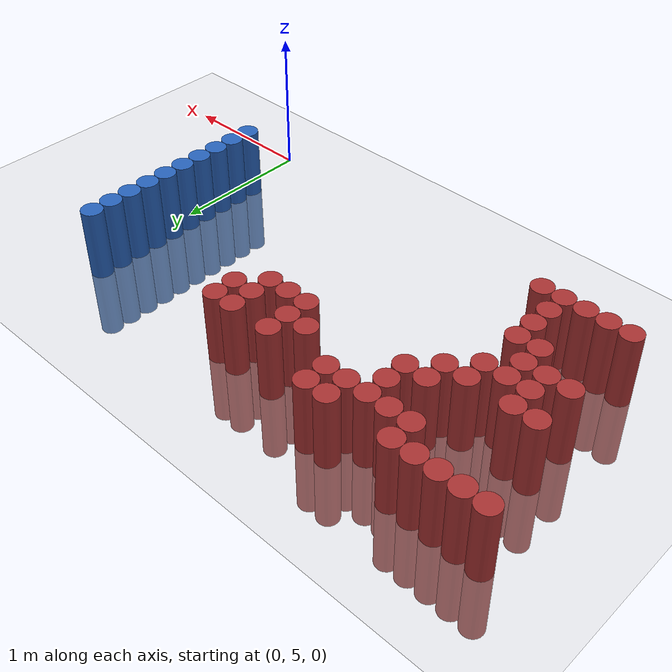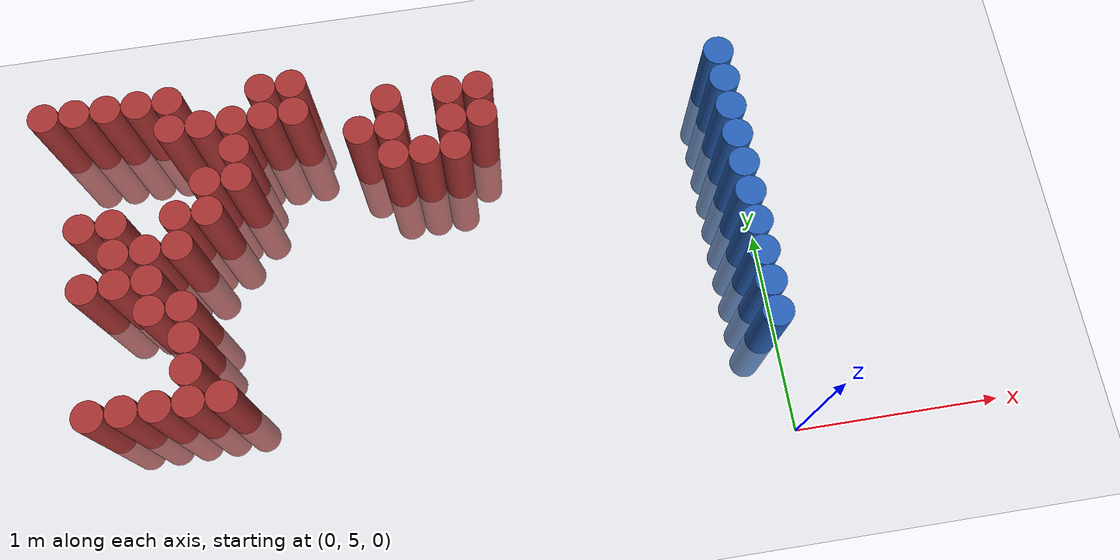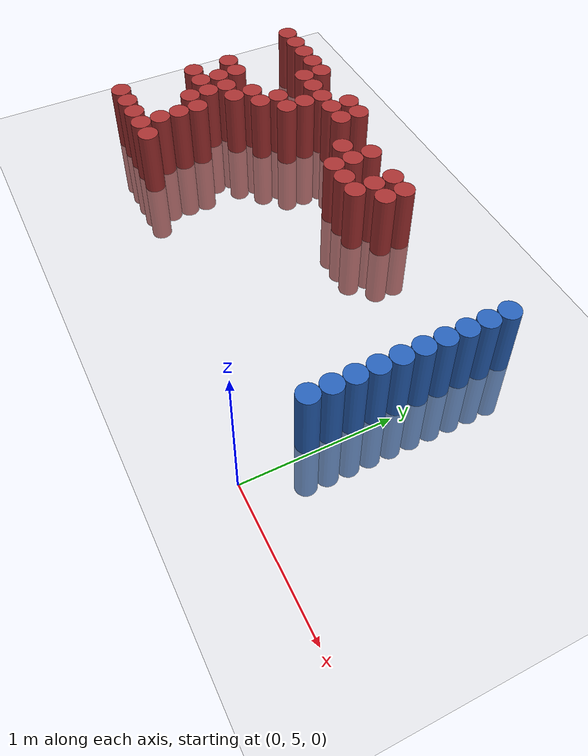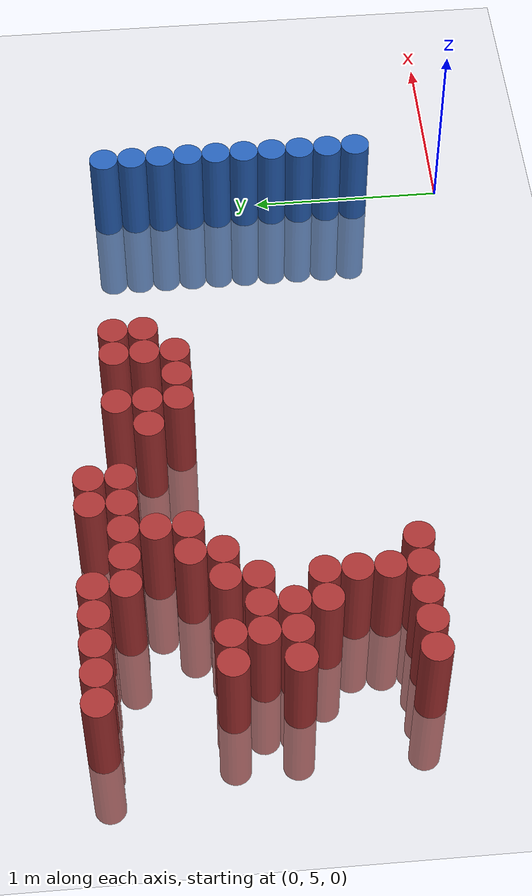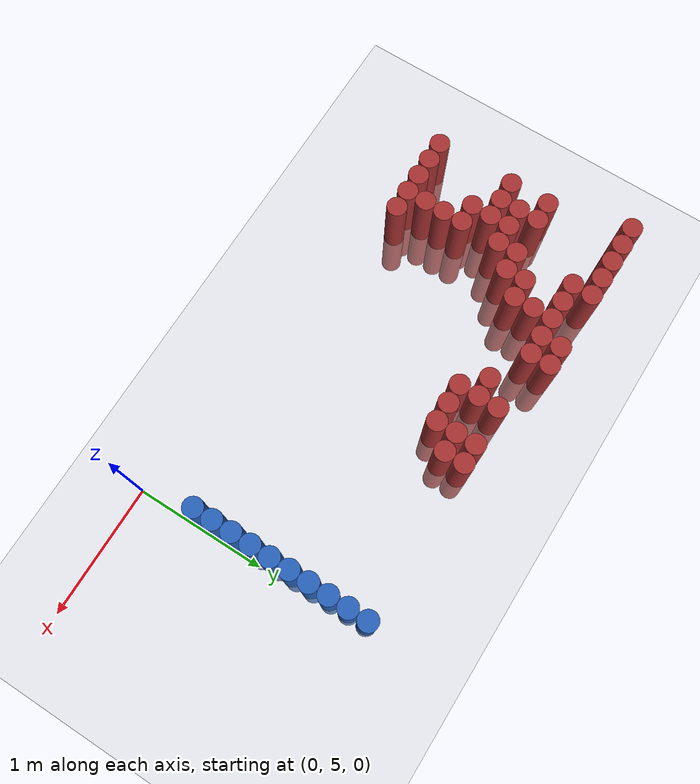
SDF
<sdf version="1.6">
 <world name="default">
  <model name="ground_plane">
   <static>1</static>
   <link name="link">
    <collision name="collision">
     <geometry><plane><normal>0 0 1</normal><size>100 100</size></plane></geometry>
     <surface><friction><ode><mu>100</mu><mu2>50</mu2></ode></friction></surface>
    </collision>
    <visual name="visual">
     <cast_shadows>0</cast_shadows>
     <geometry><plane><normal>0 0 1</normal><size>100 100</size></plane></geometry>
     <material>
      <script><uri>file://media/materials/scripts/gazebo.material</uri><name>Gazebo/Grey</name></script>
     </material>
    </visual>
   </link>
  </model>
  <model name="unit_cylinder_159">
   <static>1</static>
   <pose>-3.375000 6.975000 0.000000 0.000000 0.000000 0.000000</pose>
   <link name="link">
    <inertial>
     <mass>1</mass>
     <inertia><ixx>0.145833</ixx><ixy>0</ixy><ixz>0</ixz><iyy>0.145833</iyy><iyz>0</iyz><izz>0.125</izz></inertia>
    </inertial>
    <collision name="collision">
     <geometry><cylinder><radius>0.075000</radius><length>1</length></cylinder></geometry>
    </collision>
    <visual name="visual">
     <geometry><cylinder><radius>0.075000</radius><length>1</length></cylinder></geometry>
     <material>
      <ambient>0.648000 0.192000 0.192000 1</ambient>
      <diffuse>0.648000 0.192000 0.192000 1</diffuse>
     </material>
     <material>
      <script><name>Gazebo/Grey</name><uri>file://media/materials/scripts/gazebo.material</uri></script>
     </material>
    </visual>
   </link>
  </model>
  <model name="unit_cylinder_160">
   <static>1</static>
   <pose>-3.225000 5.475000 0.000000 0.000000 0.000000 0.000000</pose>
   <link name="link">
    <inertial>
     <mass>1</mass>
     <inertia><ixx>0.145833</ixx><ixy>0</ixy><ixz>0</ixz><iyy>0.145833</iyy><iyz>0</iyz><izz>0.125</izz></inertia>
    </inertial>
    <collision name="collision">
     <geometry><cylinder><radius>0.075000</radius><length>1</length></cylinder></geometry>
    </collision>
    <visual name="visual">
     <geometry><cylinder><radius>0.075000</radius><length>1</length></cylinder></geometry>
     <material>
      <ambient>0.648000 0.192000 0.192000 1</ambient>
      <diffuse>0.648000 0.192000 0.192000 1</diffuse>
     </material>
     <material>
      <script><name>Gazebo/Grey</name><uri>file://media/materials/scripts/gazebo.material</uri></script>
     </material>
    </visual>
   </link>
  </model>
  <model name="unit_cylinder_161">
   <static>1</static>
   <pose>-3.225000 6.075000 0.000000 0.000000 0.000000 0.000000</pose>
   <link name="link">
    <inertial>
     <mass>1</mass>
     <inertia><ixx>0.145833</ixx><ixy>0</ixy><ixz>0</ixz><iyy>0.145833</iyy><iyz>0</iyz><izz>0.125</izz></inertia>
    </inertial>
    <collision name="collision">
     <geometry><cylinder><radius>0.075000</radius><length>1</length></cylinder></geometry>
    </collision>
    <visual name="visual">
     <geometry><cylinder><radius>0.075000</radius><length>1</length></cylinder></geometry>
     <material>
      <ambient>0.648000 0.192000 0.192000 1</ambient>
      <diffuse>0.648000 0.192000 0.192000 1</diffuse>
     </material>
     <material>
      <script><name>Gazebo/Grey</name><uri>file://media/materials/scripts/gazebo.material</uri></script>
     </material>
    </visual>
   </link>
  </model>
  <model name="unit_cylinder_162">
   <static>1</static>
   <pose>-3.225000 6.375000 0.000000 0.000000 0.000000 0.000000</pose>
   <link name="link">
    <inertial>
     <mass>1</mass>
     <inertia><ixx>0.145833</ixx><ixy>0</ixy><ixz>0</ixz><iyy>0.145833</iyy><iyz>0</iyz><izz>0.125</izz></inertia>
    </inertial>
    <collision name="collision">
     <geometry><cylinder><radius>0.075000</radius><length>1</length></cylinder></geometry>
    </collision>
    <visual name="visual">
     <geometry><cylinder><radius>0.075000</radius><length>1</length></cylinder></geometry>
     <material>
      <ambient>0.648000 0.192000 0.192000 1</ambient>
      <diffuse>0.648000 0.192000 0.192000 1</diffuse>
     </material>
     <material>
      <script><name>Gazebo/Grey</name><uri>file://media/materials/scripts/gazebo.material</uri></script>
     </material>
    </visual>
   </link>
  </model>
  <model name="unit_cylinder_163">
   <static>1</static>
   <pose>-3.225000 6.975000 0.000000 0.000000 0.000000 0.000000</pose>
   <link name="link">
    <inertial>
     <mass>1</mass>
     <inertia><ixx>0.145833</ixx><ixy>0</ixy><ixz>0</ixz><iyy>0.145833</iyy><iyz>0</iyz><izz>0.125</izz></inertia>
    </inertial>
    <collision name="collision">
     <geometry><cylinder><radius>0.075000</radius><length>1</length></cylinder></geometry>
    </collision>
    <visual name="visual">
     <geometry><cylinder><radius>0.075000</radius><length>1</length></cylinder></geometry>
     <material>
      <ambient>0.648000 0.192000 0.192000 1</ambient>
      <diffuse>0.648000 0.192000 0.192000 1</diffuse>
     </material>
     <material>
      <script><name>Gazebo/Grey</name><uri>file://media/materials/scripts/gazebo.material</uri></script>
     </material>
    </visual>
   </link>
  </model>
  <model name="unit_cylinder_164">
   <static>1</static>
   <pose>-3.075000 5.475000 0.000000 0.000000 0.000000 0.000000</pose>
   <link name="link">
    <inertial>
     <mass>1</mass>
     <inertia><ixx>0.145833</ixx><ixy>0</ixy><ixz>0</ixz><iyy>0.145833</iyy><iyz>0</iyz><izz>0.125</izz></inertia>
    </inertial>
    <collision name="collision">
     <geometry><cylinder><radius>0.075000</radius><length>1</length></cylinder></geometry>
    </collision>
    <visual name="visual">
     <geometry><cylinder><radius>0.075000</radius><length>1</length></cylinder></geometry>
     <material>
      <ambient>0.648000 0.192000 0.192000 1</ambient>
      <diffuse>0.648000 0.192000 0.192000 1</diffuse>
     </material>
     <material>
      <script><name>Gazebo/Grey</name><uri>file://media/materials/scripts/gazebo.material</uri></script>
     </material>
    </visual>
   </link>
  </model>
  <model name="unit_cylinder_165">
   <static>1</static>
   <pose>-3.075000 6.075000 0.000000 0.000000 0.000000 0.000000</pose>
   <link name="link">
    <inertial>
     <mass>1</mass>
     <inertia><ixx>0.145833</ixx><ixy>0</ixy><ixz>0</ixz><iyy>0.145833</iyy><iyz>0</iyz><izz>0.125</izz></inertia>
    </inertial>
    <collision name="collision">
     <geometry><cylinder><radius>0.075000</radius><length>1</length></cylinder></geometry>
    </collision>
    <visual name="visual">
     <geometry><cylinder><radius>0.075000</radius><length>1</length></cylinder></geometry>
     <material>
      <ambient>0.648000 0.192000 0.192000 1</ambient>
      <diffuse>0.648000 0.192000 0.192000 1</diffuse>
     </material>
     <material>
      <script><name>Gazebo/Grey</name><uri>file://media/materials/scripts/gazebo.material</uri></script>
     </material>
    </visual>
   </link>
  </model>
  <model name="unit_cylinder_166">
   <static>1</static>
   <pose>-3.075000 6.225000 0.000000 0.000000 0.000000 0.000000</pose>
   <link name="link">
    <inertial>
     <mass>1</mass>
     <inertia><ixx>0.145833</ixx><ixy>0</ixy><ixz>0</ixz><iyy>0.145833</iyy><iyz>0</iyz><izz>0.125</izz></inertia>
    </inertial>
    <collision name="collision">
     <geometry><cylinder><radius>0.075000</radius><length>1</length></cylinder></geometry>
    </collision>
    <visual name="visual">
     <geometry><cylinder><radius>0.075000</radius><length>1</length></cylinder></geometry>
     <material>
      <ambient>0.648000 0.192000 0.192000 1</ambient>
      <diffuse>0.648000 0.192000 0.192000 1</diffuse>
     </material>
     <material>
      <script><name>Gazebo/Grey</name><uri>file://media/materials/scripts/gazebo.material</uri></script>
     </material>
    </visual>
   </link>
  </model>
  <model name="unit_cylinder_167">
   <static>1</static>
   <pose>-3.075000 6.375000 0.000000 0.000000 0.000000 0.000000</pose>
   <link name="link">
    <inertial>
     <mass>1</mass>
     <inertia><ixx>0.145833</ixx><ixy>0</ixy><ixz>0</ixz><iyy>0.145833</iyy><iyz>0</iyz><izz>0.125</izz></inertia>
    </inertial>
    <collision name="collision">
     <geometry><cylinder><radius>0.075000</radius><length>1</length></cylinder></geometry>
    </collision>
    <visual name="visual">
     <geometry><cylinder><radius>0.075000</radius><length>1</length></cylinder></geometry>
     <material>
      <ambient>0.648000 0.192000 0.192000 1</ambient>
      <diffuse>0.648000 0.192000 0.192000 1</diffuse>
     </material>
     <material>
      <script><name>Gazebo/Grey</name><uri>file://media/materials/scripts/gazebo.material</uri></script>
     </material>
    </visual>
   </link>
  </model>
  <model name="unit_cylinder_168">
   <static>1</static>
   <pose>-3.075000 6.975000 0.000000 0.000000 0.000000 0.000000</pose>
   <link name="link">
    <inertial>
     <mass>1</mass>
     <inertia><ixx>0.145833</ixx><ixy>0</ixy><ixz>0</ixz><iyy>0.145833</iyy><iyz>0</iyz><izz>0.125</izz></inertia>
    </inertial>
    <collision name="collision">
     <geometry><cylinder><radius>0.075000</radius><length>1</length></cylinder></geometry>
    </collision>
    <visual name="visual">
     <geometry><cylinder><radius>0.075000</radius><length>1</length></cylinder></geometry>
     <material>
      <ambient>0.648000 0.192000 0.192000 1</ambient>
      <diffuse>0.648000 0.192000 0.192000 1</diffuse>
     </material>
     <material>
      <script><name>Gazebo/Grey</name><uri>file://media/materials/scripts/gazebo.material</uri></script>
     </material>
    </visual>
   </link>
  </model>
  <model name="unit_cylinder_171">
   <static>1</static>
   <pose>-2.925000 5.475000 0.000000 0.000000 0.000000 0.000000</pose>
   <link name="link">
    <inertial>
     <mass>1</mass>
     <inertia><ixx>0.145833</ixx><ixy>0</ixy><ixz>0</ixz><iyy>0.145833</iyy><iyz>0</iyz><izz>0.125</izz></inertia>
    </inertial>
    <collision name="collision">
     <geometry><cylinder><radius>0.075000</radius><length>1</length></cylinder></geometry>
    </collision>
    <visual name="visual">
     <geometry><cylinder><radius>0.075000</radius><length>1</length></cylinder></geometry>
     <material>
      <ambient>0.648000 0.192000 0.192000 1</ambient>
      <diffuse>0.648000 0.192000 0.192000 1</diffuse>
     </material>
     <material>
      <script><name>Gazebo/Grey</name><uri>file://media/materials/scripts/gazebo.material</uri></script>
     </material>
    </visual>
   </link>
  </model>
  <model name="unit_cylinder_172">
   <static>1</static>
   <pose>-2.925000 5.925000 0.000000 0.000000 0.000000 0.000000</pose>
   <link name="link">
    <inertial>
     <mass>1</mass>
     <inertia><ixx>0.145833</ixx><ixy>0</ixy><ixz>0</ixz><iyy>0.145833</iyy><iyz>0</iyz><izz>0.125</izz></inertia>
    </inertial>
    <collision name="collision">
     <geometry><cylinder><radius>0.075000</radius><length>1</length></cylinder></geometry>
    </collision>
    <visual name="visual">
     <geometry><cylinder><radius>0.075000</radius><length>1</length></cylinder></geometry>
     <material>
      <ambient>0.648000 0.192000 0.192000 1</ambient>
      <diffuse>0.648000 0.192000 0.192000 1</diffuse>
     </material>
     <material>
      <script><name>Gazebo/Grey</name><uri>file://media/materials/scripts/gazebo.material</uri></script>
     </material>
    </visual>
   </link>
  </model>
  <model name="unit_cylinder_173">
   <static>1</static>
   <pose>-2.925000 6.075000 0.000000 0.000000 0.000000 0.000000</pose>
   <link name="link">
    <inertial>
     <mass>1</mass>
     <inertia><ixx>0.145833</ixx><ixy>0</ixy><ixz>0</ixz><iyy>0.145833</iyy><iyz>0</iyz><izz>0.125</izz></inertia>
    </inertial>
    <collision name="collision">
     <geometry><cylinder><radius>0.075000</radius><length>1</length></cylinder></geometry>
    </collision>
    <visual name="visual">
     <geometry><cylinder><radius>0.075000</radius><length>1</length></cylinder></geometry>
     <material>
      <ambient>0.648000 0.192000 0.192000 1</ambient>
      <diffuse>0.648000 0.192000 0.192000 1</diffuse>
     </material>
     <material>
      <script><name>Gazebo/Grey</name><uri>file://media/materials/scripts/gazebo.material</uri></script>
     </material>
    </visual>
   </link>
  </model>
  <model name="unit_cylinder_174">
   <static>1</static>
   <pose>-2.925000 6.225000 0.000000 0.000000 0.000000 0.000000</pose>
   <link name="link">
    <inertial>
     <mass>1</mass>
     <inertia><ixx>0.145833</ixx><ixy>0</ixy><ixz>0</ixz><iyy>0.145833</iyy><iyz>0</iyz><izz>0.125</izz></inertia>
    </inertial>
    <collision name="collision">
     <geometry><cylinder><radius>0.075000</radius><length>1</length></cylinder></geometry>
    </collision>
    <visual name="visual">
     <geometry><cylinder><radius>0.075000</radius><length>1</length></cylinder></geometry>
     <material>
      <ambient>0.648000 0.192000 0.192000 1</ambient>
      <diffuse>0.648000 0.192000 0.192000 1</diffuse>
     </material>
     <material>
      <script><name>Gazebo/Grey</name><uri>file://media/materials/scripts/gazebo.material</uri></script>
     </material>
    </visual>
   </link>
  </model>
  <model name="unit_cylinder_175">
   <static>1</static>
   <pose>-2.925000 6.975000 0.000000 0.000000 0.000000 0.000000</pose>
   <link name="link">
    <inertial>
     <mass>1</mass>
     <inertia><ixx>0.145833</ixx><ixy>0</ixy><ixz>0</ixz><iyy>0.145833</iyy><iyz>0</iyz><izz>0.125</izz></inertia>
    </inertial>
    <collision name="collision">
     <geometry><cylinder><radius>0.075000</radius><length>1</length></cylinder></geometry>
    </collision>
    <visual name="visual">
     <geometry><cylinder><radius>0.075000</radius><length>1</length></cylinder></geometry>
     <material>
      <ambient>0.648000 0.192000 0.192000 1</ambient>
      <diffuse>0.648000 0.192000 0.192000 1</diffuse>
     </material>
     <material>
      <script><name>Gazebo/Grey</name><uri>file://media/materials/scripts/gazebo.material</uri></script>
     </material>
    </visual>
   </link>
  </model>
  <model name="unit_cylinder_178">
   <static>1</static>
   <pose>-2.775000 5.475000 0.000000 0.000000 0.000000 0.000000</pose>
   <link name="link">
    <inertial>
     <mass>1</mass>
     <inertia><ixx>0.145833</ixx><ixy>0</ixy><ixz>0</ixz><iyy>0.145833</iyy><iyz>0</iyz><izz>0.125</izz></inertia>
    </inertial>
    <collision name="collision">
     <geometry><cylinder><radius>0.075000</radius><length>1</length></cylinder></geometry>
    </collision>
    <visual name="visual">
     <geometry><cylinder><radius>0.075000</radius><length>1</length></cylinder></geometry>
     <material>
      <ambient>0.648000 0.192000 0.192000 1</ambient>
      <diffuse>0.648000 0.192000 0.192000 1</diffuse>
     </material>
     <material>
      <script><name>Gazebo/Grey</name><uri>file://media/materials/scripts/gazebo.material</uri></script>
     </material>
    </visual>
   </link>
  </model>
  <model name="unit_cylinder_179">
   <static>1</static>
   <pose>-2.775000 5.625000 0.000000 0.000000 0.000000 0.000000</pose>
   <link name="link">
    <inertial>
     <mass>1</mass>
     <inertia><ixx>0.145833</ixx><ixy>0</ixy><ixz>0</ixz><iyy>0.145833</iyy><iyz>0</iyz><izz>0.125</izz></inertia>
    </inertial>
    <collision name="collision">
     <geometry><cylinder><radius>0.075000</radius><length>1</length></cylinder></geometry>
    </collision>
    <visual name="visual">
     <geometry><cylinder><radius>0.075000</radius><length>1</length></cylinder></geometry>
     <material>
      <ambient>0.648000 0.192000 0.192000 1</ambient>
      <diffuse>0.648000 0.192000 0.192000 1</diffuse>
     </material>
     <material>
      <script><name>Gazebo/Grey</name><uri>file://media/materials/scripts/gazebo.material</uri></script>
     </material>
    </visual>
   </link>
  </model>
  <model name="unit_cylinder_180">
   <static>1</static>
   <pose>-2.775000 5.775000 0.000000 0.000000 0.000000 0.000000</pose>
   <link name="link">
    <inertial>
     <mass>1</mass>
     <inertia><ixx>0.145833</ixx><ixy>0</ixy><ixz>0</ixz><iyy>0.145833</iyy><iyz>0</iyz><izz>0.125</izz></inertia>
    </inertial>
    <collision name="collision">
     <geometry><cylinder><radius>0.075000</radius><length>1</length></cylinder></geometry>
    </collision>
    <visual name="visual">
     <geometry><cylinder><radius>0.075000</radius><length>1</length></cylinder></geometry>
     <material>
      <ambient>0.648000 0.192000 0.192000 1</ambient>
      <diffuse>0.648000 0.192000 0.192000 1</diffuse>
     </material>
     <material>
      <script><name>Gazebo/Grey</name><uri>file://media/materials/scripts/gazebo.material</uri></script>
     </material>
    </visual>
   </link>
  </model>
  <model name="unit_cylinder_181">
   <static>1</static>
   <pose>-2.775000 5.925000 0.000000 0.000000 0.000000 0.000000</pose>
   <link name="link">
    <inertial>
     <mass>1</mass>
     <inertia><ixx>0.145833</ixx><ixy>0</ixy><ixz>0</ixz><iyy>0.145833</iyy><iyz>0</iyz><izz>0.125</izz></inertia>
    </inertial>
    <collision name="collision">
     <geometry><cylinder><radius>0.075000</radius><length>1</length></cylinder></geometry>
    </collision>
    <visual name="visual">
     <geometry><cylinder><radius>0.075000</radius><length>1</length></cylinder></geometry>
     <material>
      <ambient>0.648000 0.192000 0.192000 1</ambient>
      <diffuse>0.648000 0.192000 0.192000 1</diffuse>
     </material>
     <material>
      <script><name>Gazebo/Grey</name><uri>file://media/materials/scripts/gazebo.material</uri></script>
     </material>
    </visual>
   </link>
  </model>
  <model name="unit_cylinder_182">
   <static>1</static>
   <pose>-2.775000 6.225000 0.000000 0.000000 0.000000 0.000000</pose>
   <link name="link">
    <inertial>
     <mass>1</mass>
     <inertia><ixx>0.145833</ixx><ixy>0</ixy><ixz>0</ixz><iyy>0.145833</iyy><iyz>0</iyz><izz>0.125</izz></inertia>
    </inertial>
    <collision name="collision">
     <geometry><cylinder><radius>0.075000</radius><length>1</length></cylinder></geometry>
    </collision>
    <visual name="visual">
     <geometry><cylinder><radius>0.075000</radius><length>1</length></cylinder></geometry>
     <material>
      <ambient>0.648000 0.192000 0.192000 1</ambient>
      <diffuse>0.648000 0.192000 0.192000 1</diffuse>
     </material>
     <material>
      <script><name>Gazebo/Grey</name><uri>file://media/materials/scripts/gazebo.material</uri></script>
     </material>
    </visual>
   </link>
  </model>
  <model name="unit_cylinder_183">
   <static>1</static>
   <pose>-2.775000 6.375000 0.000000 0.000000 0.000000 0.000000</pose>
   <link name="link">
    <inertial>
     <mass>1</mass>
     <inertia><ixx>0.145833</ixx><ixy>0</ixy><ixz>0</ixz><iyy>0.145833</iyy><iyz>0</iyz><izz>0.125</izz></inertia>
    </inertial>
    <collision name="collision">
     <geometry><cylinder><radius>0.075000</radius><length>1</length></cylinder></geometry>
    </collision>
    <visual name="visual">
     <geometry><cylinder><radius>0.075000</radius><length>1</length></cylinder></geometry>
     <material>
      <ambient>0.648000 0.192000 0.192000 1</ambient>
      <diffuse>0.648000 0.192000 0.192000 1</diffuse>
     </material>
     <material>
      <script><name>Gazebo/Grey</name><uri>file://media/materials/scripts/gazebo.material</uri></script>
     </material>
    </visual>
   </link>
  </model>
  <model name="unit_cylinder_184">
   <static>1</static>
   <pose>-2.775000 6.825000 0.000000 0.000000 0.000000 0.000000</pose>
   <link name="link">
    <inertial>
     <mass>1</mass>
     <inertia><ixx>0.145833</ixx><ixy>0</ixy><ixz>0</ixz><iyy>0.145833</iyy><iyz>0</iyz><izz>0.125</izz></inertia>
    </inertial>
    <collision name="collision">
     <geometry><cylinder><radius>0.075000</radius><length>1</length></cylinder></geometry>
    </collision>
    <visual name="visual">
     <geometry><cylinder><radius>0.075000</radius><length>1</length></cylinder></geometry>
     <material>
      <ambient>0.648000 0.192000 0.192000 1</ambient>
      <diffuse>0.648000 0.192000 0.192000 1</diffuse>
     </material>
     <material>
      <script><name>Gazebo/Grey</name><uri>file://media/materials/scripts/gazebo.material</uri></script>
     </material>
    </visual>
   </link>
  </model>
  <model name="unit_cylinder_185">
   <static>1</static>
   <pose>-2.775000 6.975000 0.000000 0.000000 0.000000 0.000000</pose>
   <link name="link">
    <inertial>
     <mass>1</mass>
     <inertia><ixx>0.145833</ixx><ixy>0</ixy><ixz>0</ixz><iyy>0.145833</iyy><iyz>0</iyz><izz>0.125</izz></inertia>
    </inertial>
    <collision name="collision">
     <geometry><cylinder><radius>0.075000</radius><length>1</length></cylinder></geometry>
    </collision>
    <visual name="visual">
     <geometry><cylinder><radius>0.075000</radius><length>1</length></cylinder></geometry>
     <material>
      <ambient>0.648000 0.192000 0.192000 1</ambient>
      <diffuse>0.648000 0.192000 0.192000 1</diffuse>
     </material>
     <material>
      <script><name>Gazebo/Grey</name><uri>file://media/materials/scripts/gazebo.material</uri></script>
     </material>
    </visual>
   </link>
  </model>
  <model name="unit_cylinder_186">
   <static>1</static>
   <pose>-2.625000 5.475000 0.000000 0.000000 0.000000 0.000000</pose>
   <link name="link">
    <inertial>
     <mass>1</mass>
     <inertia><ixx>0.145833</ixx><ixy>0</ixy><ixz>0</ixz><iyy>0.145833</iyy><iyz>0</iyz><izz>0.125</izz></inertia>
    </inertial>
    <collision name="collision">
     <geometry><cylinder><radius>0.075000</radius><length>1</length></cylinder></geometry>
    </collision>
    <visual name="visual">
     <geometry><cylinder><radius>0.075000</radius><length>1</length></cylinder></geometry>
     <material>
      <ambient>0.648000 0.192000 0.192000 1</ambient>
      <diffuse>0.648000 0.192000 0.192000 1</diffuse>
     </material>
     <material>
      <script><name>Gazebo/Grey</name><uri>file://media/materials/scripts/gazebo.material</uri></script>
     </material>
    </visual>
   </link>
  </model>
  <model name="unit_cylinder_187">
   <static>1</static>
   <pose>-2.625000 6.375000 0.000000 0.000000 0.000000 0.000000</pose>
   <link name="link">
    <inertial>
     <mass>1</mass>
     <inertia><ixx>0.145833</ixx><ixy>0</ixy><ixz>0</ixz><iyy>0.145833</iyy><iyz>0</iyz><izz>0.125</izz></inertia>
    </inertial>
    <collision name="collision">
     <geometry><cylinder><radius>0.075000</radius><length>1</length></cylinder></geometry>
    </collision>
    <visual name="visual">
     <geometry><cylinder><radius>0.075000</radius><length>1</length></cylinder></geometry>
     <material>
      <ambient>0.648000 0.192000 0.192000 1</ambient>
      <diffuse>0.648000 0.192000 0.192000 1</diffuse>
     </material>
     <material>
      <script><name>Gazebo/Grey</name><uri>file://media/materials/scripts/gazebo.material</uri></script>
     </material>
    </visual>
   </link>
  </model>
  <model name="unit_cylinder_188">
   <static>1</static>
   <pose>-2.625000 6.525000 0.000000 0.000000 0.000000 0.000000</pose>
   <link name="link">
    <inertial>
     <mass>1</mass>
     <inertia><ixx>0.145833</ixx><ixy>0</ixy><ixz>0</ixz><iyy>0.145833</iyy><iyz>0</iyz><izz>0.125</izz></inertia>
    </inertial>
    <collision name="collision">
     <geometry><cylinder><radius>0.075000</radius><length>1</length></cylinder></geometry>
    </collision>
    <visual name="visual">
     <geometry><cylinder><radius>0.075000</radius><length>1</length></cylinder></geometry>
     <material>
      <ambient>0.648000 0.192000 0.192000 1</ambient>
      <diffuse>0.648000 0.192000 0.192000 1</diffuse>
     </material>
     <material>
      <script><name>Gazebo/Grey</name><uri>file://media/materials/scripts/gazebo.material</uri></script>
     </material>
    </visual>
   </link>
  </model>
  <model name="unit_cylinder_189">
   <static>1</static>
   <pose>-2.625000 6.825000 0.000000 0.000000 0.000000 0.000000</pose>
   <link name="link">
    <inertial>
     <mass>1</mass>
     <inertia><ixx>0.145833</ixx><ixy>0</ixy><ixz>0</ixz><iyy>0.145833</iyy><iyz>0</iyz><izz>0.125</izz></inertia>
    </inertial>
    <collision name="collision">
     <geometry><cylinder><radius>0.075000</radius><length>1</length></cylinder></geometry>
    </collision>
    <visual name="visual">
     <geometry><cylinder><radius>0.075000</radius><length>1</length></cylinder></geometry>
     <material>
      <ambient>0.648000 0.192000 0.192000 1</ambient>
      <diffuse>0.648000 0.192000 0.192000 1</diffuse>
     </material>
     <material>
      <script><name>Gazebo/Grey</name><uri>file://media/materials/scripts/gazebo.material</uri></script>
     </material>
    </visual>
   </link>
  </model>
  <model name="unit_cylinder_190">
   <static>1</static>
   <pose>-2.475000 6.525000 0.000000 0.000000 0.000000 0.000000</pose>
   <link name="link">
    <inertial>
     <mass>1</mass>
     <inertia><ixx>0.145833</ixx><ixy>0</ixy><ixz>0</ixz><iyy>0.145833</iyy><iyz>0</iyz><izz>0.125</izz></inertia>
    </inertial>
    <collision name="collision">
     <geometry><cylinder><radius>0.075000</radius><length>1</length></cylinder></geometry>
    </collision>
    <visual name="visual">
     <geometry><cylinder><radius>0.075000</radius><length>1</length></cylinder></geometry>
     <material>
      <ambient>0.648000 0.192000 0.192000 1</ambient>
      <diffuse>0.648000 0.192000 0.192000 1</diffuse>
     </material>
     <material>
      <script><name>Gazebo/Grey</name><uri>file://media/materials/scripts/gazebo.material</uri></script>
     </material>
    </visual>
   </link>
  </model>
  <model name="unit_cylinder_191">
   <static>1</static>
   <pose>-2.475000 6.675000 0.000000 0.000000 0.000000 0.000000</pose>
   <link name="link">
    <inertial>
     <mass>1</mass>
     <inertia><ixx>0.145833</ixx><ixy>0</ixy><ixz>0</ixz><iyy>0.145833</iyy><iyz>0</iyz><izz>0.125</izz></inertia>
    </inertial>
    <collision name="collision">
     <geometry><cylinder><radius>0.075000</radius><length>1</length></cylinder></geometry>
    </collision>
    <visual name="visual">
     <geometry><cylinder><radius>0.075000</radius><length>1</length></cylinder></geometry>
     <material>
      <ambient>0.648000 0.192000 0.192000 1</ambient>
      <diffuse>0.648000 0.192000 0.192000 1</diffuse>
     </material>
     <material>
      <script><name>Gazebo/Grey</name><uri>file://media/materials/scripts/gazebo.material</uri></script>
     </material>
    </visual>
   </link>
  </model>
  <model name="unit_cylinder_192">
   <static>1</static>
   <pose>-2.475000 6.825000 0.000000 0.000000 0.000000 0.000000</pose>
   <link name="link">
    <inertial>
     <mass>1</mass>
     <inertia><ixx>0.145833</ixx><ixy>0</ixy><ixz>0</ixz><iyy>0.145833</iyy><iyz>0</iyz><izz>0.125</izz></inertia>
    </inertial>
    <collision name="collision">
     <geometry><cylinder><radius>0.075000</radius><length>1</length></cylinder></geometry>
    </collision>
    <visual name="visual">
     <geometry><cylinder><radius>0.075000</radius><length>1</length></cylinder></geometry>
     <material>
      <ambient>0.648000 0.192000 0.192000 1</ambient>
      <diffuse>0.648000 0.192000 0.192000 1</diffuse>
     </material>
     <material>
      <script><name>Gazebo/Grey</name><uri>file://media/materials/scripts/gazebo.material</uri></script>
     </material>
    </visual>
   </link>
  </model>
  <model name="unit_cylinder_193">
   <static>1</static>
   <pose>-2.325000 6.825000 0.000000 0.000000 0.000000 0.000000</pose>
   <link name="link">
    <inertial>
     <mass>1</mass>
     <inertia><ixx>0.145833</ixx><ixy>0</ixy><ixz>0</ixz><iyy>0.145833</iyy><iyz>0</iyz><izz>0.125</izz></inertia>
    </inertial>
    <collision name="collision">
     <geometry><cylinder><radius>0.075000</radius><length>1</length></cylinder></geometry>
    </collision>
    <visual name="visual">
     <geometry><cylinder><radius>0.075000</radius><length>1</length></cylinder></geometry>
     <material>
      <ambient>0.648000 0.192000 0.192000 1</ambient>
      <diffuse>0.648000 0.192000 0.192000 1</diffuse>
     </material>
     <material>
      <script><name>Gazebo/Grey</name><uri>file://media/materials/scripts/gazebo.material</uri></script>
     </material>
    </visual>
   </link>
  </model>
  <model name="unit_cylinder_194">
   <static>1</static>
   <pose>-2.325000 6.975000 0.000000 0.000000 0.000000 0.000000</pose>
   <link name="link">
    <inertial>
     <mass>1</mass>
     <inertia><ixx>0.145833</ixx><ixy>0</ixy><ixz>0</ixz><iyy>0.145833</iyy><iyz>0</iyz><izz>0.125</izz></inertia>
    </inertial>
    <collision name="collision">
     <geometry><cylinder><radius>0.075000</radius><length>1</length></cylinder></geometry>
    </collision>
    <visual name="visual">
     <geometry><cylinder><radius>0.075000</radius><length>1</length></cylinder></geometry>
     <material>
      <ambient>0.648000 0.192000 0.192000 1</ambient>
      <diffuse>0.648000 0.192000 0.192000 1</diffuse>
     </material>
     <material>
      <script><name>Gazebo/Grey</name><uri>file://media/materials/scripts/gazebo.material</uri></script>
     </material>
    </visual>
   </link>
  </model>
  <model name="unit_cylinder_195">
   <static>1</static>
   <pose>-2.175000 6.825000 0.000000 0.000000 0.000000 0.000000</pose>
   <link name="link">
    <inertial>
     <mass>1</mass>
     <inertia><ixx>0.145833</ixx><ixy>0</ixy><ixz>0</ixz><iyy>0.145833</iyy><iyz>0</iyz><izz>0.125</izz></inertia>
    </inertial>
    <collision name="collision">
     <geometry><cylinder><radius>0.075000</radius><length>1</length></cylinder></geometry>
    </collision>
    <visual name="visual">
     <geometry><cylinder><radius>0.075000</radius><length>1</length></cylinder></geometry>
     <material>
      <ambient>0.648000 0.192000 0.192000 1</ambient>
      <diffuse>0.648000 0.192000 0.192000 1</diffuse>
     </material>
     <material>
      <script><name>Gazebo/Grey</name><uri>file://media/materials/scripts/gazebo.material</uri></script>
     </material>
    </visual>
   </link>
  </model>
  <model name="unit_cylinder_196">
   <static>1</static>
   <pose>-2.175000 6.975000 0.000000 0.000000 0.000000 0.000000</pose>
   <link name="link">
    <inertial>
     <mass>1</mass>
     <inertia><ixx>0.145833</ixx><ixy>0</ixy><ixz>0</ixz><iyy>0.145833</iyy><iyz>0</iyz><izz>0.125</izz></inertia>
    </inertial>
    <collision name="collision">
     <geometry><cylinder><radius>0.075000</radius><length>1</length></cylinder></geometry>
    </collision>
    <visual name="visual">
     <geometry><cylinder><radius>0.075000</radius><length>1</length></cylinder></geometry>
     <material>
      <ambient>0.648000 0.192000 0.192000 1</ambient>
      <diffuse>0.648000 0.192000 0.192000 1</diffuse>
     </material>
     <material>
      <script><name>Gazebo/Grey</name><uri>file://media/materials/scripts/gazebo.material</uri></script>
     </material>
    </visual>
   </link>
  </model>
  <model name="unit_cylinder_199">
   <static>1</static>
   <pose>-1.875000 6.675000 0.000000 0.000000 0.000000 0.000000</pose>
   <link name="link">
    <inertial>
     <mass>1</mass>
     <inertia><ixx>0.145833</ixx><ixy>0</ixy><ixz>0</ixz><iyy>0.145833</iyy><iyz>0</iyz><izz>0.125</izz></inertia>
    </inertial>
    <collision name="collision">
     <geometry><cylinder><radius>0.075000</radius><length>1</length></cylinder></geometry>
    </collision>
    <visual name="visual">
     <geometry><cylinder><radius>0.075000</radius><length>1</length></cylinder></geometry>
     <material>
      <ambient>0.648000 0.192000 0.192000 1</ambient>
      <diffuse>0.648000 0.192000 0.192000 1</diffuse>
     </material>
     <material>
      <script><name>Gazebo/Grey</name><uri>file://media/materials/scripts/gazebo.material</uri></script>
     </material>
    </visual>
   </link>
  </model>
  <model name="unit_cylinder_202">
   <static>1</static>
   <pose>-1.725000 6.525000 0.000000 0.000000 0.000000 0.000000</pose>
   <link name="link">
    <inertial>
     <mass>1</mass>
     <inertia><ixx>0.145833</ixx><ixy>0</ixy><ixz>0</ixz><iyy>0.145833</iyy><iyz>0</iyz><izz>0.125</izz></inertia>
    </inertial>
    <collision name="collision">
     <geometry><cylinder><radius>0.075000</radius><length>1</length></cylinder></geometry>
    </collision>
    <visual name="visual">
     <geometry><cylinder><radius>0.075000</radius><length>1</length></cylinder></geometry>
     <material>
      <ambient>0.648000 0.192000 0.192000 1</ambient>
      <diffuse>0.648000 0.192000 0.192000 1</diffuse>
     </material>
     <material>
      <script><name>Gazebo/Grey</name><uri>file://media/materials/scripts/gazebo.material</uri></script>
     </material>
    </visual>
   </link>
  </model>
  <model name="unit_cylinder_203">
   <static>1</static>
   <pose>-1.725000 6.675000 0.000000 0.000000 0.000000 0.000000</pose>
   <link name="link">
    <inertial>
     <mass>1</mass>
     <inertia><ixx>0.145833</ixx><ixy>0</ixy><ixz>0</ixz><iyy>0.145833</iyy><iyz>0</iyz><izz>0.125</izz></inertia>
    </inertial>
    <collision name="collision">
     <geometry><cylinder><radius>0.075000</radius><length>1</length></cylinder></geometry>
    </collision>
    <visual name="visual">
     <geometry><cylinder><radius>0.075000</radius><length>1</length></cylinder></geometry>
     <material>
      <ambient>0.648000 0.192000 0.192000 1</ambient>
      <diffuse>0.648000 0.192000 0.192000 1</diffuse>
     </material>
     <material>
      <script><name>Gazebo/Grey</name><uri>file://media/materials/scripts/gazebo.material</uri></script>
     </material>
    </visual>
   </link>
  </model>
  <model name="unit_cylinder_204">
   <static>1</static>
   <pose>-1.725000 6.825000 0.000000 0.000000 0.000000 0.000000</pose>
   <link name="link">
    <inertial>
     <mass>1</mass>
     <inertia><ixx>0.145833</ixx><ixy>0</ixy><ixz>0</ixz><iyy>0.145833</iyy><iyz>0</iyz><izz>0.125</izz></inertia>
    </inertial>
    <collision name="collision">
     <geometry><cylinder><radius>0.075000</radius><length>1</length></cylinder></geometry>
    </collision>
    <visual name="visual">
     <geometry><cylinder><radius>0.075000</radius><length>1</length></cylinder></geometry>
     <material>
      <ambient>0.648000 0.192000 0.192000 1</ambient>
      <diffuse>0.648000 0.192000 0.192000 1</diffuse>
     </material>
     <material>
      <script><name>Gazebo/Grey</name><uri>file://media/materials/scripts/gazebo.material</uri></script>
     </material>
    </visual>
   </link>
  </model>
  <model name="unit_cylinder_209">
   <static>1</static>
   <pose>-1.575000 6.525000 0.000000 0.000000 0.000000 0.000000</pose>
   <link name="link">
    <inertial>
     <mass>1</mass>
     <inertia><ixx>0.145833</ixx><ixy>0</ixy><ixz>0</ixz><iyy>0.145833</iyy><iyz>0</iyz><izz>0.125</izz></inertia>
    </inertial>
    <collision name="collision">
     <geometry><cylinder><radius>0.075000</radius><length>1</length></cylinder></geometry>
    </collision>
    <visual name="visual">
     <geometry><cylinder><radius>0.075000</radius><length>1</length></cylinder></geometry>
     <material>
      <ambient>0.648000 0.192000 0.192000 1</ambient>
      <diffuse>0.648000 0.192000 0.192000 1</diffuse>
     </material>
     <material>
      <script><name>Gazebo/Grey</name><uri>file://media/materials/scripts/gazebo.material</uri></script>
     </material>
    </visual>
   </link>
  </model>
  <model name="unit_cylinder_214">
   <static>1</static>
   <pose>-1.425000 6.525000 0.000000 0.000000 0.000000 0.000000</pose>
   <link name="link">
    <inertial>
     <mass>1</mass>
     <inertia><ixx>0.145833</ixx><ixy>0</ixy><ixz>0</ixz><iyy>0.145833</iyy><iyz>0</iyz><izz>0.125</izz></inertia>
    </inertial>
    <collision name="collision">
     <geometry><cylinder><radius>0.075000</radius><length>1</length></cylinder></geometry>
    </collision>
    <visual name="visual">
     <geometry><cylinder><radius>0.075000</radius><length>1</length></cylinder></geometry>
     <material>
      <ambient>0.648000 0.192000 0.192000 1</ambient>
      <diffuse>0.648000 0.192000 0.192000 1</diffuse>
     </material>
     <material>
      <script><name>Gazebo/Grey</name><uri>file://media/materials/scripts/gazebo.material</uri></script>
     </material>
    </visual>
   </link>
  </model>
  <model name="unit_cylinder_215">
   <static>1</static>
   <pose>-1.425000 6.675000 0.000000 0.000000 0.000000 0.000000</pose>
   <link name="link">
    <inertial>
     <mass>1</mass>
     <inertia><ixx>0.145833</ixx><ixy>0</ixy><ixz>0</ixz><iyy>0.145833</iyy><iyz>0</iyz><izz>0.125</izz></inertia>
    </inertial>
    <collision name="collision">
     <geometry><cylinder><radius>0.075000</radius><length>1</length></cylinder></geometry>
    </collision>
    <visual name="visual">
     <geometry><cylinder><radius>0.075000</radius><length>1</length></cylinder></geometry>
     <material>
      <ambient>0.648000 0.192000 0.192000 1</ambient>
      <diffuse>0.648000 0.192000 0.192000 1</diffuse>
     </material>
     <material>
      <script><name>Gazebo/Grey</name><uri>file://media/materials/scripts/gazebo.material</uri></script>
     </material>
    </visual>
   </link>
  </model>
  <model name="unit_cylinder_216">
   <static>1</static>
   <pose>-1.425000 6.825000 0.000000 0.000000 0.000000 0.000000</pose>
   <link name="link">
    <inertial>
     <mass>1</mass>
     <inertia><ixx>0.145833</ixx><ixy>0</ixy><ixz>0</ixz><iyy>0.145833</iyy><iyz>0</iyz><izz>0.125</izz></inertia>
    </inertial>
    <collision name="collision">
     <geometry><cylinder><radius>0.075000</radius><length>1</length></cylinder></geometry>
    </collision>
    <visual name="visual">
     <geometry><cylinder><radius>0.075000</radius><length>1</length></cylinder></geometry>
     <material>
      <ambient>0.648000 0.192000 0.192000 1</ambient>
      <diffuse>0.648000 0.192000 0.192000 1</diffuse>
     </material>
     <material>
      <script><name>Gazebo/Grey</name><uri>file://media/materials/scripts/gazebo.material</uri></script>
     </material>
    </visual>
   </link>
  </model>
  <model name="unit_cylinder_221">
   <static>1</static>
   <pose>-1.275000 6.675000 0.000000 0.000000 0.000000 0.000000</pose>
   <link name="link">
    <inertial>
     <mass>1</mass>
     <inertia><ixx>0.145833</ixx><ixy>0</ixy><ixz>0</ixz><iyy>0.145833</iyy><iyz>0</iyz><izz>0.125</izz></inertia>
    </inertial>
    <collision name="collision">
     <geometry><cylinder><radius>0.075000</radius><length>1</length></cylinder></geometry>
    </collision>
    <visual name="visual">
     <geometry><cylinder><radius>0.075000</radius><length>1</length></cylinder></geometry>
     <material>
      <ambient>0.648000 0.192000 0.192000 1</ambient>
      <diffuse>0.648000 0.192000 0.192000 1</diffuse>
     </material>
     <material>
      <script><name>Gazebo/Grey</name><uri>file://media/materials/scripts/gazebo.material</uri></script>
     </material>
    </visual>
   </link>
  </model>
  <model name="unit_cylinder_222">
   <static>1</static>
   <pose>-1.275000 6.825000 0.000000 0.000000 0.000000 0.000000</pose>
   <link name="link">
    <inertial>
     <mass>1</mass>
     <inertia><ixx>0.145833</ixx><ixy>0</ixy><ixz>0</ixz><iyy>0.145833</iyy><iyz>0</iyz><izz>0.125</izz></inertia>
    </inertial>
    <collision name="collision">
     <geometry><cylinder><radius>0.075000</radius><length>1</length></cylinder></geometry>
    </collision>
    <visual name="visual">
     <geometry><cylinder><radius>0.075000</radius><length>1</length></cylinder></geometry>
     <material>
      <ambient>0.648000 0.192000 0.192000 1</ambient>
      <diffuse>0.648000 0.192000 0.192000 1</diffuse>
     </material>
     <material>
      <script><name>Gazebo/Grey</name><uri>file://media/materials/scripts/gazebo.material</uri></script>
     </material>
    </visual>
   </link>
  </model>
  <model name="unit_cylinder_244">
   <static>1</static>
   <pose>-0.075000 5.475000 0.000000 0.000000 0.000000 0.000000</pose>
   <link name="link">
    <inertial>
     <mass>1</mass>
     <inertia><ixx>0.145833</ixx><ixy>0</ixy><ixz>0</ixz><iyy>0.145833</iyy><iyz>0</iyz><izz>0.125</izz></inertia>
    </inertial>
    <collision name="collision">
     <geometry><cylinder><radius>0.075000</radius><length>1</length></cylinder></geometry>
    </collision>
    <visual name="visual">
     <geometry><cylinder><radius>0.075000</radius><length>1</length></cylinder></geometry>
     <material>
      <ambient>0.152000 0.379000 0.720000 1</ambient>
      <diffuse>0.152000 0.379000 0.720000 1</diffuse>
     </material>
     <material>
      <script><name>Gazebo/Grey</name><uri>file://media/materials/scripts/gazebo.material</uri></script>
     </material>
    </visual>
   </link>
  </model>
  <model name="unit_cylinder_245">
   <static>1</static>
   <pose>-0.075000 5.625000 0.000000 0.000000 0.000000 0.000000</pose>
   <link name="link">
    <inertial>
     <mass>1</mass>
     <inertia><ixx>0.145833</ixx><ixy>0</ixy><ixz>0</ixz><iyy>0.145833</iyy><iyz>0</iyz><izz>0.125</izz></inertia>
    </inertial>
    <collision name="collision">
     <geometry><cylinder><radius>0.075000</radius><length>1</length></cylinder></geometry>
    </collision>
    <visual name="visual">
     <geometry><cylinder><radius>0.075000</radius><length>1</length></cylinder></geometry>
     <material>
      <ambient>0.152000 0.379000 0.720000 1</ambient>
      <diffuse>0.152000 0.379000 0.720000 1</diffuse>
     </material>
     <material>
      <script><name>Gazebo/Grey</name><uri>file://media/materials/scripts/gazebo.material</uri></script>
     </material>
    </visual>
   </link>
  </model>
  <model name="unit_cylinder_246">
   <static>1</static>
   <pose>-0.075000 5.775000 0.000000 0.000000 0.000000 0.000000</pose>
   <link name="link">
    <inertial>
     <mass>1</mass>
     <inertia><ixx>0.145833</ixx><ixy>0</ixy><ixz>0</ixz><iyy>0.145833</iyy><iyz>0</iyz><izz>0.125</izz></inertia>
    </inertial>
    <collision name="collision">
     <geometry><cylinder><radius>0.075000</radius><length>1</length></cylinder></geometry>
    </collision>
    <visual name="visual">
     <geometry><cylinder><radius>0.075000</radius><length>1</length></cylinder></geometry>
     <material>
      <ambient>0.152000 0.379000 0.720000 1</ambient>
      <diffuse>0.152000 0.379000 0.720000 1</diffuse>
     </material>
     <material>
      <script><name>Gazebo/Grey</name><uri>file://media/materials/scripts/gazebo.material</uri></script>
     </material>
    </visual>
   </link>
  </model>
  <model name="unit_cylinder_247">
   <static>1</static>
   <pose>-0.075000 5.925000 0.000000 0.000000 0.000000 0.000000</pose>
   <link name="link">
    <inertial>
     <mass>1</mass>
     <inertia><ixx>0.145833</ixx><ixy>0</ixy><ixz>0</ixz><iyy>0.145833</iyy><iyz>0</iyz><izz>0.125</izz></inertia>
    </inertial>
    <collision name="collision">
     <geometry><cylinder><radius>0.075000</radius><length>1</length></cylinder></geometry>
    </collision>
    <visual name="visual">
     <geometry><cylinder><radius>0.075000</radius><length>1</length></cylinder></geometry>
     <material>
      <ambient>0.152000 0.379000 0.720000 1</ambient>
      <diffuse>0.152000 0.379000 0.720000 1</diffuse>
     </material>
     <material>
      <script><name>Gazebo/Grey</name><uri>file://media/materials/scripts/gazebo.material</uri></script>
     </material>
    </visual>
   </link>
  </model>
  <model name="unit_cylinder_248">
   <static>1</static>
   <pose>-0.075000 6.075000 0.000000 0.000000 0.000000 0.000000</pose>
   <link name="link">
    <inertial>
     <mass>1</mass>
     <inertia><ixx>0.145833</ixx><ixy>0</ixy><ixz>0</ixz><iyy>0.145833</iyy><iyz>0</iyz><izz>0.125</izz></inertia>
    </inertial>
    <collision name="collision">
     <geometry><cylinder><radius>0.075000</radius><length>1</length></cylinder></geometry>
    </collision>
    <visual name="visual">
     <geometry><cylinder><radius>0.075000</radius><length>1</length></cylinder></geometry>
     <material>
      <ambient>0.152000 0.379000 0.720000 1</ambient>
      <diffuse>0.152000 0.379000 0.720000 1</diffuse>
     </material>
     <material>
      <script><name>Gazebo/Grey</name><uri>file://media/materials/scripts/gazebo.material</uri></script>
     </material>
    </visual>
   </link>
  </model>
  <model name="unit_cylinder_249">
   <static>1</static>
   <pose>-0.075000 6.225000 0.000000 0.000000 0.000000 0.000000</pose>
   <link name="link">
    <inertial>
     <mass>1</mass>
     <inertia><ixx>0.145833</ixx><ixy>0</ixy><ixz>0</ixz><iyy>0.145833</iyy><iyz>0</iyz><izz>0.125</izz></inertia>
    </inertial>
    <collision name="collision">
     <geometry><cylinder><radius>0.075000</radius><length>1</length></cylinder></geometry>
    </collision>
    <visual name="visual">
     <geometry><cylinder><radius>0.075000</radius><length>1</length></cylinder></geometry>
     <material>
      <ambient>0.152000 0.379000 0.720000 1</ambient>
      <diffuse>0.152000 0.379000 0.720000 1</diffuse>
     </material>
     <material>
      <script><name>Gazebo/Grey</name><uri>file://media/materials/scripts/gazebo.material</uri></script>
     </material>
    </visual>
   </link>
  </model>
  <model name="unit_cylinder_250">
   <static>1</static>
   <pose>-0.075000 6.375000 0.000000 0.000000 0.000000 0.000000</pose>
   <link name="link">
    <inertial>
     <mass>1</mass>
     <inertia><ixx>0.145833</ixx><ixy>0</ixy><ixz>0</ixz><iyy>0.145833</iyy><iyz>0</iyz><izz>0.125</izz></inertia>
    </inertial>
    <collision name="collision">
     <geometry><cylinder><radius>0.075000</radius><length>1</length></cylinder></geometry>
    </collision>
    <visual name="visual">
     <geometry><cylinder><radius>0.075000</radius><length>1</length></cylinder></geometry>
     <material>
      <ambient>0.152000 0.379000 0.720000 1</ambient>
      <diffuse>0.152000 0.379000 0.720000 1</diffuse>
     </material>
     <material>
      <script><name>Gazebo/Grey</name><uri>file://media/materials/scripts/gazebo.material</uri></script>
     </material>
    </visual>
   </link>
  </model>
  <model name="unit_cylinder_251">
   <static>1</static>
   <pose>-0.075000 6.525000 0.000000 0.000000 0.000000 0.000000</pose>
   <link name="link">
    <inertial>
     <mass>1</mass>
     <inertia><ixx>0.145833</ixx><ixy>0</ixy><ixz>0</ixz><iyy>0.145833</iyy><iyz>0</iyz><izz>0.125</izz></inertia>
    </inertial>
    <collision name="collision">
     <geometry><cylinder><radius>0.075000</radius><length>1</length></cylinder></geometry>
    </collision>
    <visual name="visual">
     <geometry><cylinder><radius>0.075000</radius><length>1</length></cylinder></geometry>
     <material>
      <ambient>0.152000 0.379000 0.720000 1</ambient>
      <diffuse>0.152000 0.379000 0.720000 1</diffuse>
     </material>
     <material>
      <script><name>Gazebo/Grey</name><uri>file://media/materials/scripts/gazebo.material</uri></script>
     </material>
    </visual>
   </link>
  </model>
  <model name="unit_cylinder_252">
   <static>1</static>
   <pose>-0.075000 6.675000 0.000000 0.000000 0.000000 0.000000</pose>
   <link name="link">
    <inertial>
     <mass>1</mass>
     <inertia><ixx>0.145833</ixx><ixy>0</ixy><ixz>0</ixz><iyy>0.145833</iyy><iyz>0</iyz><izz>0.125</izz></inertia>
    </inertial>
    <collision name="collision">
     <geometry><cylinder><radius>0.075000</radius><length>1</length></cylinder></geometry>
    </collision>
    <visual name="visual">
     <geometry><cylinder><radius>0.075000</radius><length>1</length></cylinder></geometry>
     <material>
      <ambient>0.152000 0.379000 0.720000 1</ambient>
      <diffuse>0.152000 0.379000 0.720000 1</diffuse>
     </material>
     <material>
      <script><name>Gazebo/Grey</name><uri>file://media/materials/scripts/gazebo.material</uri></script>
     </material>
    </visual>
   </link>
  </model>
  <model name="unit_cylinder_253">
   <static>1</static>
   <pose>-0.075000 6.825000 0.000000 0.000000 0.000000 0.000000</pose>
   <link name="link">
    <inertial>
     <mass>1</mass>
     <inertia><ixx>0.145833</ixx><ixy>0</ixy><ixz>0</ixz><iyy>0.145833</iyy><iyz>0</iyz><izz>0.125</izz></inertia>
    </inertial>
    <collision name="collision">
     <geometry><cylinder><radius>0.075000</radius><length>1</length></cylinder></geometry>
    </collision>
    <visual name="visual">
     <geometry><cylinder><radius>0.075000</radius><length>1</length></cylinder></geometry>
     <material>
      <ambient>0.152000 0.379000 0.720000 1</ambient>
      <diffuse>0.152000 0.379000 0.720000 1</diffuse>
     </material>
     <material>
      <script><name>Gazebo/Grey</name><uri>file://media/materials/scripts/gazebo.material</uri></script>
     </material>
    </visual>
   </link>
  </model>
 </world>
</sdf>
